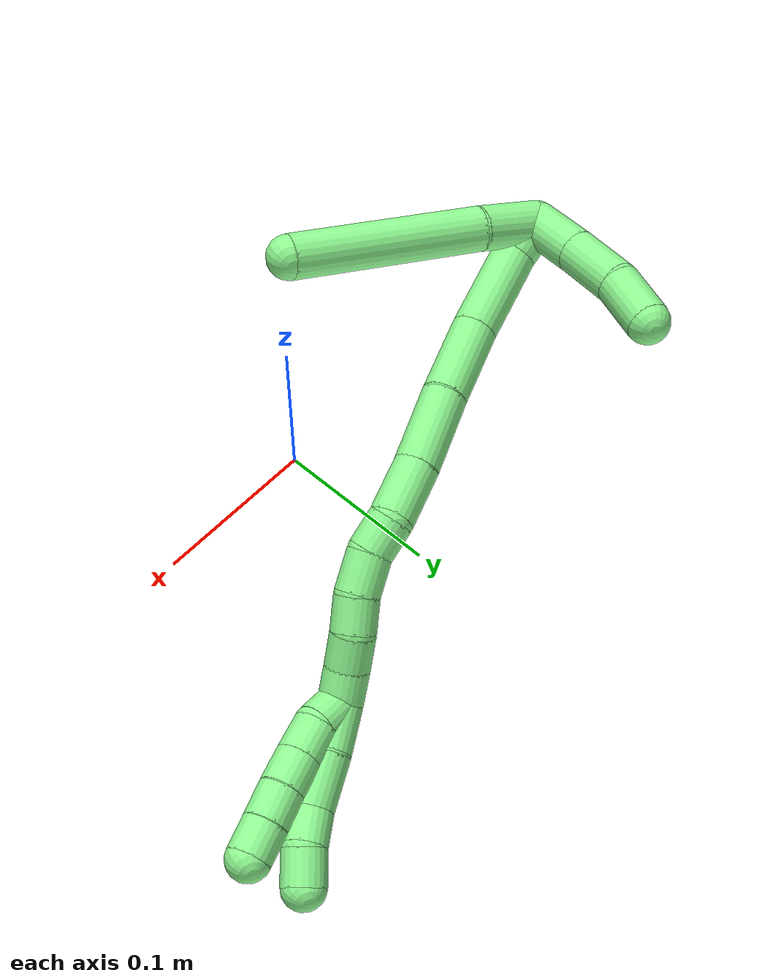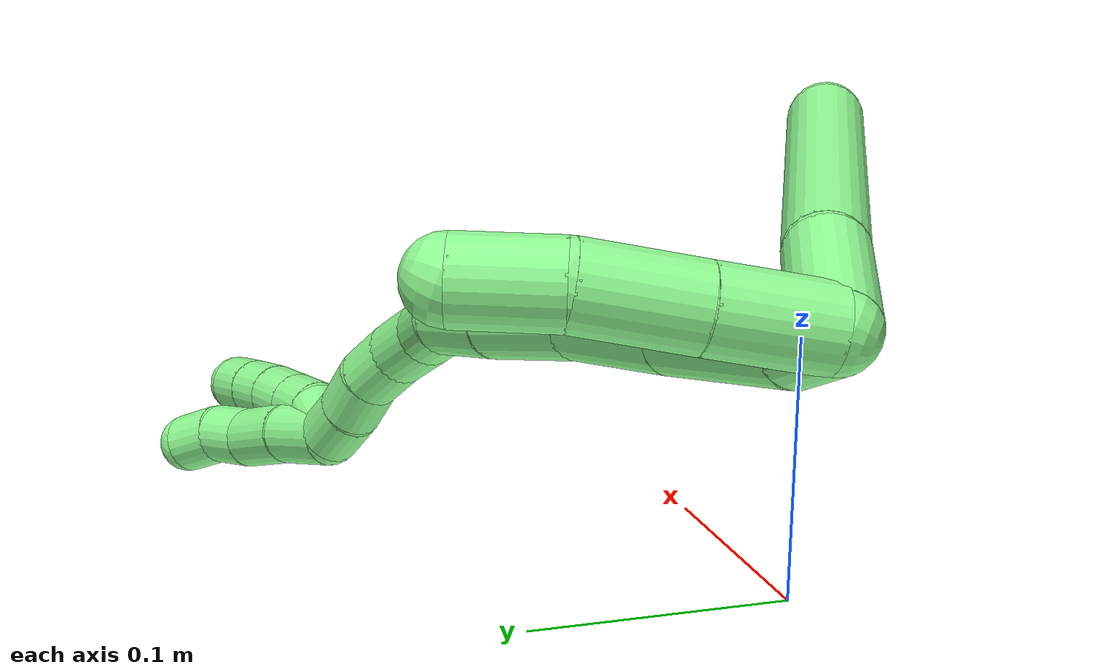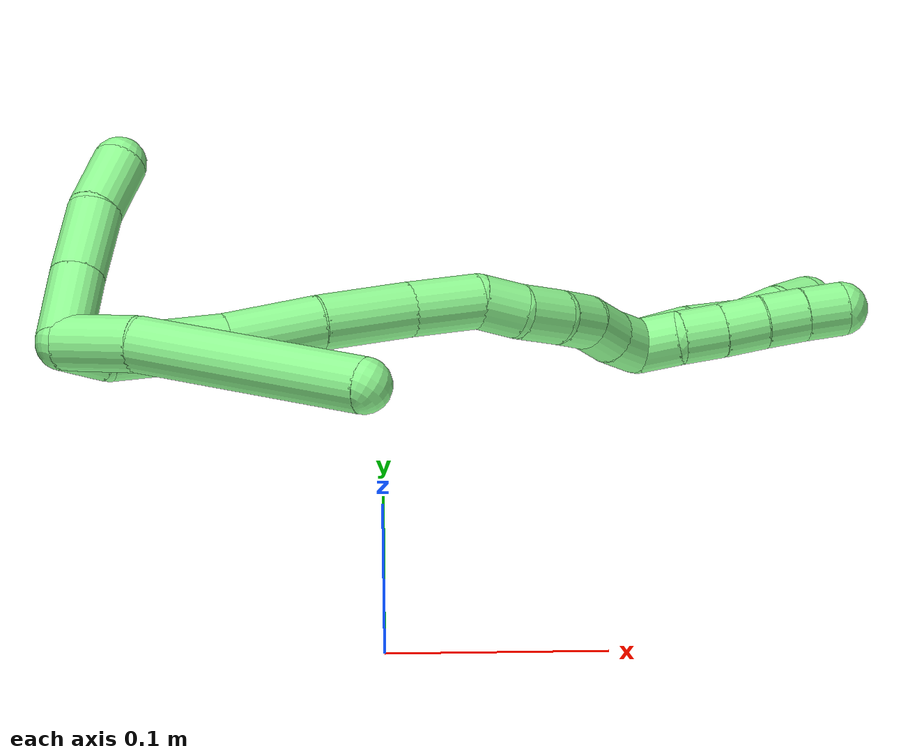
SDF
<sdf version="1.7">
 <world name="default">
  <model name="13">
   <static>0</static>
   <link name="13">
    <collision name="collision-cylinder-e_1_2_8">
     <pose>0.003919 -0.018113 0.004305 1.33746 0.207449 0.164145</pose>
     <geometry><cylinder><radius>0.0125</radius><length>0.038051</length></cylinder></geometry>
     <surface>
      <friction><ode><mu>1.16</mu><mu2>1.16</mu2><slip1>0</slip1><slip2>0</slip2></ode></friction>
      <contact><ode><kp>1e+06</kp><kd>1</kd><max_vel>0</max_vel><min_depth>0.001</min_depth></ode></contact>
     </surface>
    </collision>
    <visual name="visual-cylinder-e_1_2_8">
     <pose>0.003919 -0.018113 0.004305 1.33746 0.207449 0.164145</pose>
     <geometry><cylinder><radius>0.0125</radius><length>0.038051</length></cylinder></geometry>
     <material><ambient>0.564706 0.984314 0.572549 1</ambient></material>
    </visual>
    <collision name="collision-cylinder-e_2_8_6">
     <pose>0.025161 -0.088959 0.015839 1.43455 0.314669 0.275013</pose>
     <geometry><cylinder><radius>0.0125</radius><length>0.111949</length></cylinder></geometry>
     <surface>
      <friction><ode><mu>1.16</mu><mu2>1.16</mu2><slip1>0</slip1><slip2>0</slip2></ode></friction>
      <contact><ode><kp>1e+06</kp><kd>1</kd><max_vel>0</max_vel><min_depth>0.001</min_depth></ode></contact>
     </surface>
    </collision>
    <visual name="visual-cylinder-e_2_8_6">
     <pose>0.025161 -0.088959 0.015839 1.43455 0.314669 0.275013</pose>
     <geometry><cylinder><radius>0.0125</radius><length>0.111949</length></cylinder></geometry>
     <material><ambient>0.564706 0.984314 0.572549 1</ambient></material>
    </visual>
    <collision name="collision-cylinder-e_1_2_9">
     <pose>-0.000881 0.006187 0.016145 -0.365943 -0.050935 0.009427</pose>
     <geometry><cylinder><radius>0.0125</radius><length>0.034624</length></cylinder></geometry>
     <surface>
      <friction><ode><mu>1.16</mu><mu2>1.16</mu2><slip1>0</slip1><slip2>0</slip2></ode></friction>
      <contact><ode><kp>1e+06</kp><kd>1</kd><max_vel>0</max_vel><min_depth>0.001</min_depth></ode></contact>
     </surface>
    </collision>
    <visual name="visual-cylinder-e_1_2_9">
     <pose>-0.000881 0.006187 0.016145 -0.365943 -0.050935 0.009427</pose>
     <geometry><cylinder><radius>0.0125</radius><length>0.034624</length></cylinder></geometry>
     <material><ambient>0.564706 0.984314 0.572549 1</ambient></material>
    </visual>
    <collision name="collision-cylinder-e_2_9_10">
     <pose>-0.002271 0.018055 0.048818 -0.331079 -0.029089 0.00486</pose>
     <geometry><cylinder><radius>0.0125</radius><length>0.034971</length></cylinder></geometry>
     <surface>
      <friction><ode><mu>1.16</mu><mu2>1.16</mu2><slip1>0</slip1><slip2>0</slip2></ode></friction>
      <contact><ode><kp>1e+06</kp><kd>1</kd><max_vel>0</max_vel><min_depth>0.001</min_depth></ode></contact>
     </surface>
    </collision>
    <visual name="visual-cylinder-e_2_9_10">
     <pose>-0.002271 0.018055 0.048818 -0.331079 -0.029089 0.00486</pose>
     <geometry><cylinder><radius>0.0125</radius><length>0.034971</length></cylinder></geometry>
     <material><ambient>0.564706 0.984314 0.572549 1</ambient></material>
    </visual>
    <collision name="collision-cylinder-e_3_10_5">
     <pose>-7.3e-05 0.028223 0.079618 -0.304639 0.179026 -0.027554</pose>
     <geometry><cylinder><radius>0.0125</radius><length>0.030405</length></cylinder></geometry>
     <surface>
      <friction><ode><mu>1.16</mu><mu2>1.16</mu2><slip1>0</slip1><slip2>0</slip2></ode></friction>
      <contact><ode><kp>1e+06</kp><kd>1</kd><max_vel>0</max_vel><min_depth>0.001</min_depth></ode></contact>
     </surface>
    </collision>
    <visual name="visual-cylinder-e_3_10_5">
     <pose>-7.3e-05 0.028223 0.079618 -0.304639 0.179026 -0.027554</pose>
     <geometry><cylinder><radius>0.0125</radius><length>0.030405</length></cylinder></geometry>
     <material><ambient>0.564706 0.984314 0.572549 1</ambient></material>
    </visual>
    <collision name="collision-cylinder-e_1_2_11">
     <pose>0.009231 -0.004475 0.003749 0.873407 1.00687 0.503261</pose>
     <geometry><cylinder><radius>0.0125</radius><length>0.021844</length></cylinder></geometry>
     <surface>
      <friction><ode><mu>1.16</mu><mu2>1.16</mu2><slip1>0</slip1><slip2>0</slip2></ode></friction>
      <contact><ode><kp>1e+06</kp><kd>1</kd><max_vel>0</max_vel><min_depth>0.001</min_depth></ode></contact>
     </surface>
    </collision>
    <visual name="visual-cylinder-e_1_2_11">
     <pose>0.009231 -0.004475 0.003749 0.873407 1.00687 0.503261</pose>
     <geometry><cylinder><radius>0.0125</radius><length>0.021844</length></cylinder></geometry>
     <material><ambient>0.564706 0.984314 0.572549 1</ambient></material>
    </visual>
    <collision name="collision-cylinder-e_2_11_12">
     <pose>0.03592 -0.019976 0.023742 0.596352 0.72683 0.23271</pose>
     <geometry><cylinder><radius>0.0125</radius><length>0.052543</length></cylinder></geometry>
     <surface>
      <friction><ode><mu>1.16</mu><mu2>1.16</mu2><slip1>0</slip1><slip2>0</slip2></ode></friction>
      <contact><ode><kp>1e+06</kp><kd>1</kd><max_vel>0</max_vel><min_depth>0.001</min_depth></ode></contact>
     </surface>
    </collision>
    <visual name="visual-cylinder-e_2_11_12">
     <pose>0.03592 -0.019976 0.023742 0.596352 0.72683 0.23271</pose>
     <geometry><cylinder><radius>0.0125</radius><length>0.052543</length></cylinder></geometry>
     <material><ambient>0.564706 0.984314 0.572549 1</ambient></material>
    </visual>
    <collision name="collision-cylinder-e_3_12_13">
     <pose>0.067119 -0.03969 0.055228 0.518064 0.664444 0.182338</pose>
     <geometry><cylinder><radius>0.0125</radius><length>0.044569</length></cylinder></geometry>
     <surface>
      <friction><ode><mu>1.16</mu><mu2>1.16</mu2><slip1>0</slip1><slip2>0</slip2></ode></friction>
      <contact><ode><kp>1e+06</kp><kd>1</kd><max_vel>0</max_vel><min_depth>0.001</min_depth></ode></contact>
     </surface>
    </collision>
    <visual name="visual-cylinder-e_3_12_13">
     <pose>0.067119 -0.03969 0.055228 0.518064 0.664444 0.182338</pose>
     <geometry><cylinder><radius>0.0125</radius><length>0.044569</length></cylinder></geometry>
     <material><ambient>0.564706 0.984314 0.572549 1</ambient></material>
    </visual>
    <collision name="collision-cylinder-e_4_13_14">
     <pose>0.095727 -0.055638 0.084967 0.46431 0.742081 0.183445</pose>
     <geometry><cylinder><radius>0.0125</radius><length>0.043997</length></cylinder></geometry>
     <surface>
      <friction><ode><mu>1.16</mu><mu2>1.16</mu2><slip1>0</slip1><slip2>0</slip2></ode></friction>
      <contact><ode><kp>1e+06</kp><kd>1</kd><max_vel>0</max_vel><min_depth>0.001</min_depth></ode></contact>
     </surface>
    </collision>
    <visual name="visual-cylinder-e_4_13_14">
     <pose>0.095727 -0.055638 0.084967 0.46431 0.742081 0.183445</pose>
     <geometry><cylinder><radius>0.0125</radius><length>0.043997</length></cylinder></geometry>
     <material><ambient>0.564706 0.984314 0.572549 1</ambient></material>
    </visual>
    <collision name="collision-cylinder-e_5_14_15">
     <pose>0.121652 -0.069339 0.109981 0.549473 0.731026 0.214913</pose>
     <geometry><cylinder><radius>0.0125</radius><length>0.033128</length></cylinder></geometry>
     <surface>
      <friction><ode><mu>1.16</mu><mu2>1.16</mu2><slip1>0</slip1><slip2>0</slip2></ode></friction>
      <contact><ode><kp>1e+06</kp><kd>1</kd><max_vel>0</max_vel><min_depth>0.001</min_depth></ode></contact>
     </surface>
    </collision>
    <visual name="visual-cylinder-e_5_14_15">
     <pose>0.121652 -0.069339 0.109981 0.549473 0.731026 0.214913</pose>
     <geometry><cylinder><radius>0.0125</radius><length>0.033128</length></cylinder></geometry>
     <material><ambient>0.564706 0.984314 0.572549 1</ambient></material>
    </visual>
    <collision name="collision-cylinder-e_6_15_16">
     <pose>0.141584 -0.079598 0.124171 0.804819 1.03246 0.474071</pose>
     <geometry><cylinder><radius>0.0125</radius><length>0.02067</length></cylinder></geometry>
     <surface>
      <friction><ode><mu>1.16</mu><mu2>1.16</mu2><slip1>0</slip1><slip2>0</slip2></ode></friction>
      <contact><ode><kp>1e+06</kp><kd>1</kd><max_vel>0</max_vel><min_depth>0.001</min_depth></ode></contact>
     </surface>
    </collision>
    <visual name="visual-cylinder-e_6_15_16">
     <pose>0.141584 -0.079598 0.124171 0.804819 1.03246 0.474071</pose>
     <geometry><cylinder><radius>0.0125</radius><length>0.02067</length></cylinder></geometry>
     <material><ambient>0.564706 0.984314 0.572549 1</ambient></material>
    </visual>
    <collision name="collision-cylinder-e_7_16_17">
     <pose>0.160572 -0.084851 0.133262 0.258799 1.06479 0.153025</pose>
     <geometry><cylinder><radius>0.0125</radius><length>0.023128</length></cylinder></geometry>
     <surface>
      <friction><ode><mu>1.16</mu><mu2>1.16</mu2><slip1>0</slip1><slip2>0</slip2></ode></friction>
      <contact><ode><kp>1e+06</kp><kd>1</kd><max_vel>0</max_vel><min_depth>0.001</min_depth></ode></contact>
     </surface>
    </collision>
    <visual name="visual-cylinder-e_7_16_17">
     <pose>0.160572 -0.084851 0.133262 0.258799 1.06479 0.153025</pose>
     <geometry><cylinder><radius>0.0125</radius><length>0.023128</length></cylinder></geometry>
     <material><ambient>0.564706 0.984314 0.572549 1</ambient></material>
    </visual>
    <collision name="collision-cylinder-e_8_17_18">
     <pose>0.17958 -0.085282 0.143223 -0.21743 1.08886 -0.131976</pose>
     <geometry><cylinder><radius>0.0125</radius><length>0.020072</length></cylinder></geometry>
     <surface>
      <friction><ode><mu>1.16</mu><mu2>1.16</mu2><slip1>0</slip1><slip2>0</slip2></ode></friction>
      <contact><ode><kp>1e+06</kp><kd>1</kd><max_vel>0</max_vel><min_depth>0.001</min_depth></ode></contact>
     </surface>
    </collision>
    <visual name="visual-cylinder-e_8_17_18">
     <pose>0.17958 -0.085282 0.143223 -0.21743 1.08886 -0.131976</pose>
     <geometry><cylinder><radius>0.0125</radius><length>0.020072</length></cylinder></geometry>
     <material><ambient>0.564706 0.984314 0.572549 1</ambient></material>
    </visual>
    <collision name="collision-cylinder-e_9_18_19">
     <pose>0.198083 -0.082977 0.150206 -0.489875 1.29054 -0.37197</pose>
     <geometry><cylinder><radius>0.0125</radius><length>0.020001</length></cylinder></geometry>
     <surface>
      <friction><ode><mu>1.16</mu><mu2>1.16</mu2><slip1>0</slip1><slip2>0</slip2></ode></friction>
      <contact><ode><kp>1e+06</kp><kd>1</kd><max_vel>0</max_vel><min_depth>0.001</min_depth></ode></contact>
     </surface>
    </collision>
    <visual name="visual-cylinder-e_9_18_19">
     <pose>0.198083 -0.082977 0.150206 -0.489875 1.29054 -0.37197</pose>
     <geometry><cylinder><radius>0.0125</radius><length>0.020001</length></cylinder></geometry>
     <material><ambient>0.564706 0.984314 0.572549 1</ambient></material>
    </visual>
    <collision name="collision-cylinder-e_10_19_1">
     <pose>0.217099 -0.081109 0.156067 -0.164126 1.21764 -0.114554</pose>
     <geometry><cylinder><radius>0.0125</radius><length>0.020047</length></cylinder></geometry>
     <surface>
      <friction><ode><mu>1.16</mu><mu2>1.16</mu2><slip1>0</slip1><slip2>0</slip2></ode></friction>
      <contact><ode><kp>1e+06</kp><kd>1</kd><max_vel>0</max_vel><min_depth>0.001</min_depth></ode></contact>
     </surface>
    </collision>
    <visual name="visual-cylinder-e_10_19_1">
     <pose>0.217099 -0.081109 0.156067 -0.164126 1.21764 -0.114554</pose>
     <geometry><cylinder><radius>0.0125</radius><length>0.020047</length></cylinder></geometry>
     <material><ambient>0.564706 0.984314 0.572549 1</ambient></material>
    </visual>
    <collision name="collision-cylinder-e_1_1_20">
     <pose>0.235497 -0.083599 0.16967 0.291584 0.702096 0.107443</pose>
     <geometry><cylinder><radius>0.0125</radius><length>0.02785</length></cylinder></geometry>
     <surface>
      <friction><ode><mu>1.16</mu><mu2>1.16</mu2><slip1>0</slip1><slip2>0</slip2></ode></friction>
      <contact><ode><kp>1e+06</kp><kd>1</kd><max_vel>0</max_vel><min_depth>0.001</min_depth></ode></contact>
     </surface>
    </collision>
    <visual name="visual-cylinder-e_1_1_20">
     <pose>0.235497 -0.083599 0.16967 0.291584 0.702096 0.107443</pose>
     <geometry><cylinder><radius>0.0125</radius><length>0.02785</length></cylinder></geometry>
     <material><ambient>0.564706 0.984314 0.572549 1</ambient></material>
    </visual>
    <collision name="collision-cylinder-e_2_20_21">
     <pose>0.255827 -0.090175 0.189804 0.339973 0.821081 0.149146</pose>
     <geometry><cylinder><radius>0.0125</radius><length>0.030981</length></cylinder></geometry>
     <surface>
      <friction><ode><mu>1.16</mu><mu2>1.16</mu2><slip1>0</slip1><slip2>0</slip2></ode></friction>
      <contact><ode><kp>1e+06</kp><kd>1</kd><max_vel>0</max_vel><min_depth>0.001</min_depth></ode></contact>
     </surface>
    </collision>
    <visual name="visual-cylinder-e_2_20_21">
     <pose>0.255827 -0.090175 0.189804 0.339973 0.821081 0.149146</pose>
     <geometry><cylinder><radius>0.0125</radius><length>0.030981</length></cylinder></geometry>
     <material><ambient>0.564706 0.984314 0.572549 1</ambient></material>
    </visual>
    <collision name="collision-cylinder-e_3_21_22">
     <pose>0.272931 -0.095695 0.20798 0.238498 0.598078 0.073842</pose>
     <geometry><cylinder><radius>0.0125</radius><length>0.020485</length></cylinder></geometry>
     <surface>
      <friction><ode><mu>1.16</mu><mu2>1.16</mu2><slip1>0</slip1><slip2>0</slip2></ode></friction>
      <contact><ode><kp>1e+06</kp><kd>1</kd><max_vel>0</max_vel><min_depth>0.001</min_depth></ode></contact>
     </surface>
    </collision>
    <visual name="visual-cylinder-e_3_21_22">
     <pose>0.272931 -0.095695 0.20798 0.238498 0.598078 0.073842</pose>
     <geometry><cylinder><radius>0.0125</radius><length>0.020485</length></cylinder></geometry>
     <material><ambient>0.564706 0.984314 0.572549 1</ambient></material>
    </visual>
    <collision name="collision-cylinder-e_4_22_4">
     <pose>0.28597 -0.097173 0.223542 -0.070908 0.779693 -0.029144</pose>
     <geometry><cylinder><radius>0.0125</radius><length>0.020685</length></cylinder></geometry>
     <surface>
      <friction><ode><mu>1.16</mu><mu2>1.16</mu2><slip1>0</slip1><slip2>0</slip2></ode></friction>
      <contact><ode><kp>1e+06</kp><kd>1</kd><max_vel>0</max_vel><min_depth>0.001</min_depth></ode></contact>
     </surface>
    </collision>
    <visual name="visual-cylinder-e_4_22_4">
     <pose>0.28597 -0.097173 0.223542 -0.070908 0.779693 -0.029144</pose>
     <geometry><cylinder><radius>0.0125</radius><length>0.020685</length></cylinder></geometry>
     <material><ambient>0.564706 0.984314 0.572549 1</ambient></material>
    </visual>
    <collision name="collision-cylinder-e_1_1_23">
     <pose>0.230287 -0.087753 0.165292 0.892928 0.387999 0.18755</pose>
     <geometry><cylinder><radius>0.0125</radius><length>0.02</length></cylinder></geometry>
     <surface>
      <friction><ode><mu>1.16</mu><mu2>1.16</mu2><slip1>0</slip1><slip2>0</slip2></ode></friction>
      <contact><ode><kp>1e+06</kp><kd>1</kd><max_vel>0</max_vel><min_depth>0.001</min_depth></ode></contact>
     </surface>
    </collision>
    <visual name="visual-cylinder-e_1_1_23">
     <pose>0.230287 -0.087753 0.165292 0.892928 0.387999 0.18755</pose>
     <geometry><cylinder><radius>0.0125</radius><length>0.02</length></cylinder></geometry>
     <material><ambient>0.564706 0.984314 0.572549 1</ambient></material>
    </visual>
    <collision name="collision-cylinder-e_2_23_24">
     <pose>0.239996 -0.099685 0.177624 0.626337 0.634198 0.211746</pose>
     <geometry><cylinder><radius>0.0125</radius><length>0.02</length></cylinder></geometry>
     <surface>
      <friction><ode><mu>1.16</mu><mu2>1.16</mu2><slip1>0</slip1><slip2>0</slip2></ode></friction>
      <contact><ode><kp>1e+06</kp><kd>1</kd><max_vel>0</max_vel><min_depth>0.001</min_depth></ode></contact>
     </surface>
    </collision>
    <visual name="visual-cylinder-e_2_23_24">
     <pose>0.239996 -0.099685 0.177624 0.626337 0.634198 0.211746</pose>
     <geometry><cylinder><radius>0.0125</radius><length>0.02</length></cylinder></geometry>
     <material><ambient>0.564706 0.984314 0.572549 1</ambient></material>
    </visual>
    <collision name="collision-cylinder-e_3_24_25">
     <pose>0.251663 -0.108987 0.190936 0.593693 0.611586 0.192535</pose>
     <geometry><cylinder><radius>0.0125</radius><length>0.02</length></cylinder></geometry>
     <surface>
      <friction><ode><mu>1.16</mu><mu2>1.16</mu2><slip1>0</slip1><slip2>0</slip2></ode></friction>
      <contact><ode><kp>1e+06</kp><kd>1</kd><max_vel>0</max_vel><min_depth>0.001</min_depth></ode></contact>
     </surface>
    </collision>
    <visual name="visual-cylinder-e_3_24_25">
     <pose>0.251663 -0.108987 0.190936 0.593693 0.611586 0.192535</pose>
     <geometry><cylinder><radius>0.0125</radius><length>0.02</length></cylinder></geometry>
     <material><ambient>0.564706 0.984314 0.572549 1</ambient></material>
    </visual>
    <collision name="collision-cylinder-e_4_25_26">
     <pose>0.263581 -0.117659 0.20444 0.547142 0.665671 0.193404</pose>
     <geometry><cylinder><radius>0.0125</radius><length>0.02</length></cylinder></geometry>
     <surface>
      <friction><ode><mu>1.16</mu><mu2>1.16</mu2><slip1>0</slip1><slip2>0</slip2></ode></friction>
      <contact><ode><kp>1e+06</kp><kd>1</kd><max_vel>0</max_vel><min_depth>0.001</min_depth></ode></contact>
     </surface>
    </collision>
    <visual name="visual-cylinder-e_4_25_26">
     <pose>0.263581 -0.117659 0.20444 0.547142 0.665671 0.193404</pose>
     <geometry><cylinder><radius>0.0125</radius><length>0.02</length></cylinder></geometry>
     <material><ambient>0.564706 0.984314 0.572549 1</ambient></material>
    </visual>
    <collision name="collision-cylinder-e_5_26_3">
     <pose>0.276188 -0.125816 0.217646 0.559574 0.698609 0.208551</pose>
     <geometry><cylinder><radius>0.0125</radius><length>0.02</length></cylinder></geometry>
     <surface>
      <friction><ode><mu>1.16</mu><mu2>1.16</mu2><slip1>0</slip1><slip2>0</slip2></ode></friction>
      <contact><ode><kp>1e+06</kp><kd>1</kd><max_vel>0</max_vel><min_depth>0.001</min_depth></ode></contact>
     </surface>
    </collision>
    <visual name="visual-cylinder-e_5_26_3">
     <pose>0.276188 -0.125816 0.217646 0.559574 0.698609 0.208551</pose>
     <geometry><cylinder><radius>0.0125</radius><length>0.02</length></cylinder></geometry>
     <material><ambient>0.564706 0.984314 0.572549 1</ambient></material>
    </visual>
    <collision name="collision-sphere-3">
     <pose>0.282619 -0.12988 0.224136 0 -0 0</pose>
     <geometry><sphere><radius>0.0125</radius></sphere></geometry>
     <surface>
      <friction><ode><mu>1.16</mu><mu2>1.16</mu2><slip1>0</slip1><slip2>0</slip2></ode></friction>
      <contact><ode><kp>1e+06</kp><kd>1</kd><max_vel>0</max_vel><min_depth>0.001</min_depth></ode></contact>
     </surface>
    </collision>
    <visual name="visual-sphere-3">
     <pose>0.282619 -0.12988 0.224136 0 -0 0</pose>
     <geometry><sphere><radius>0.0125</radius></sphere></geometry>
     <material><ambient>0.564706 0.984314 0.572549 1</ambient></material>
    </visual>
    <collision name="collision-sphere-26">
     <pose>0.269756 -0.121751 0.211157 0 -0 0</pose>
     <geometry><sphere><radius>0.0125</radius></sphere></geometry>
     <surface>
      <friction><ode><mu>1.16</mu><mu2>1.16</mu2><slip1>0</slip1><slip2>0</slip2></ode></friction>
      <contact><ode><kp>1e+06</kp><kd>1</kd><max_vel>0</max_vel><min_depth>0.001</min_depth></ode></contact>
     </surface>
    </collision>
    <visual name="visual-sphere-26">
     <pose>0.269756 -0.121751 0.211157 0 -0 0</pose>
     <geometry><sphere><radius>0.0125</radius></sphere></geometry>
     <material><ambient>0.564706 0.984314 0.572549 1</ambient></material>
    </visual>
    <collision name="collision-sphere-25">
     <pose>0.257405 -0.113567 0.197723 0 -0 0</pose>
     <geometry><sphere><radius>0.0125</radius></sphere></geometry>
     <surface>
      <friction><ode><mu>1.16</mu><mu2>1.16</mu2><slip1>0</slip1><slip2>0</slip2></ode></friction>
      <contact><ode><kp>1e+06</kp><kd>1</kd><max_vel>0</max_vel><min_depth>0.001</min_depth></ode></contact>
     </surface>
    </collision>
    <visual name="visual-sphere-25">
     <pose>0.257405 -0.113567 0.197723 0 -0 0</pose>
     <geometry><sphere><radius>0.0125</radius></sphere></geometry>
     <material><ambient>0.564706 0.984314 0.572549 1</ambient></material>
    </visual>
    <collision name="collision-sphere-24">
     <pose>0.245921 -0.104407 0.18415 0 -0 0</pose>
     <geometry><sphere><radius>0.0125</radius></sphere></geometry>
     <surface>
      <friction><ode><mu>1.16</mu><mu2>1.16</mu2><slip1>0</slip1><slip2>0</slip2></ode></friction>
      <contact><ode><kp>1e+06</kp><kd>1</kd><max_vel>0</max_vel><min_depth>0.001</min_depth></ode></contact>
     </surface>
    </collision>
    <visual name="visual-sphere-24">
     <pose>0.245921 -0.104407 0.18415 0 -0 0</pose>
     <geometry><sphere><radius>0.0125</radius></sphere></geometry>
     <material><ambient>0.564706 0.984314 0.572549 1</ambient></material>
    </visual>
    <collision name="collision-sphere-23">
     <pose>0.234071 -0.094963 0.171097 0 -0 0</pose>
     <geometry><sphere><radius>0.0125</radius></sphere></geometry>
     <surface>
      <friction><ode><mu>1.16</mu><mu2>1.16</mu2><slip1>0</slip1><slip2>0</slip2></ode></friction>
      <contact><ode><kp>1e+06</kp><kd>1</kd><max_vel>0</max_vel><min_depth>0.001</min_depth></ode></contact>
     </surface>
    </collision>
    <visual name="visual-sphere-23">
     <pose>0.234071 -0.094963 0.171097 0 -0 0</pose>
     <geometry><sphere><radius>0.0125</radius></sphere></geometry>
     <material><ambient>0.564706 0.984314 0.572549 1</ambient></material>
    </visual>
    <collision name="collision-sphere-4">
     <pose>0.293241 -0.096652 0.230878 0 -0 0</pose>
     <geometry><sphere><radius>0.0125</radius></sphere></geometry>
     <surface>
      <friction><ode><mu>1.16</mu><mu2>1.16</mu2><slip1>0</slip1><slip2>0</slip2></ode></friction>
      <contact><ode><kp>1e+06</kp><kd>1</kd><max_vel>0</max_vel><min_depth>0.001</min_depth></ode></contact>
     </surface>
    </collision>
    <visual name="visual-sphere-4">
     <pose>0.293241 -0.096652 0.230878 0 -0 0</pose>
     <geometry><sphere><radius>0.0125</radius></sphere></geometry>
     <material><ambient>0.564706 0.984314 0.572549 1</ambient></material>
    </visual>
    <collision name="collision-sphere-22">
     <pose>0.278698 -0.097694 0.216205 0 -0 0</pose>
     <geometry><sphere><radius>0.0125</radius></sphere></geometry>
     <surface>
      <friction><ode><mu>1.16</mu><mu2>1.16</mu2><slip1>0</slip1><slip2>0</slip2></ode></friction>
      <contact><ode><kp>1e+06</kp><kd>1</kd><max_vel>0</max_vel><min_depth>0.001</min_depth></ode></contact>
     </surface>
    </collision>
    <visual name="visual-sphere-22">
     <pose>0.278698 -0.097694 0.216205 0 -0 0</pose>
     <geometry><sphere><radius>0.0125</radius></sphere></geometry>
     <material><ambient>0.564706 0.984314 0.572549 1</ambient></material>
    </visual>
    <collision name="collision-sphere-21">
     <pose>0.267164 -0.093695 0.199755 0 -0 0</pose>
     <geometry><sphere><radius>0.0125</radius></sphere></geometry>
     <surface>
      <friction><ode><mu>1.16</mu><mu2>1.16</mu2><slip1>0</slip1><slip2>0</slip2></ode></friction>
      <contact><ode><kp>1e+06</kp><kd>1</kd><max_vel>0</max_vel><min_depth>0.001</min_depth></ode></contact>
     </surface>
    </collision>
    <visual name="visual-sphere-21">
     <pose>0.267164 -0.093695 0.199755 0 -0 0</pose>
     <geometry><sphere><radius>0.0125</radius></sphere></geometry>
     <material><ambient>0.564706 0.984314 0.572549 1</ambient></material>
    </visual>
    <collision name="collision-sphere-20">
     <pose>0.24449 -0.086655 0.179852 0 -0 0</pose>
     <geometry><sphere><radius>0.0125</radius></sphere></geometry>
     <surface>
      <friction><ode><mu>1.16</mu><mu2>1.16</mu2><slip1>0</slip1><slip2>0</slip2></ode></friction>
      <contact><ode><kp>1e+06</kp><kd>1</kd><max_vel>0</max_vel><min_depth>0.001</min_depth></ode></contact>
     </surface>
    </collision>
    <visual name="visual-sphere-20">
     <pose>0.24449 -0.086655 0.179852 0 -0 0</pose>
     <geometry><sphere><radius>0.0125</radius></sphere></geometry>
     <material><ambient>0.564706 0.984314 0.572549 1</ambient></material>
    </visual>
    <collision name="collision-sphere-5">
     <pose>0.002634 0.032711 0.093889 0 -0 0</pose>
     <geometry><sphere><radius>0.0125</radius></sphere></geometry>
     <surface>
      <friction><ode><mu>1.16</mu><mu2>1.16</mu2><slip1>0</slip1><slip2>0</slip2></ode></friction>
      <contact><ode><kp>1e+06</kp><kd>1</kd><max_vel>0</max_vel><min_depth>0.001</min_depth></ode></contact>
     </surface>
    </collision>
    <visual name="visual-sphere-5">
     <pose>0.002634 0.032711 0.093889 0 -0 0</pose>
     <geometry><sphere><radius>0.0125</radius></sphere></geometry>
     <material><ambient>0.564706 0.984314 0.572549 1</ambient></material>
    </visual>
    <collision name="collision-sphere-10">
     <pose>-0.00278 0.023736 0.065347 0 -0 0</pose>
     <geometry><sphere><radius>0.0125</radius></sphere></geometry>
     <surface>
      <friction><ode><mu>1.16</mu><mu2>1.16</mu2><slip1>0</slip1><slip2>0</slip2></ode></friction>
      <contact><ode><kp>1e+06</kp><kd>1</kd><max_vel>0</max_vel><min_depth>0.001</min_depth></ode></contact>
     </surface>
    </collision>
    <visual name="visual-sphere-10">
     <pose>-0.00278 0.023736 0.065347 0 -0 0</pose>
     <geometry><sphere><radius>0.0125</radius></sphere></geometry>
     <material><ambient>0.564706 0.984314 0.572549 1</ambient></material>
    </visual>
    <collision name="collision-sphere-6">
     <pose>0.042486 -0.141692 0.023069 0 -0 0</pose>
     <geometry><sphere><radius>0.0125</radius></sphere></geometry>
     <surface>
      <friction><ode><mu>1.16</mu><mu2>1.16</mu2><slip1>0</slip1><slip2>0</slip2></ode></friction>
      <contact><ode><kp>1e+06</kp><kd>1</kd><max_vel>0</max_vel><min_depth>0.001</min_depth></ode></contact>
     </surface>
    </collision>
    <visual name="visual-sphere-6">
     <pose>0.042486 -0.141692 0.023069 0 -0 0</pose>
     <geometry><sphere><radius>0.0125</radius></sphere></geometry>
     <material><ambient>0.564706 0.984314 0.572549 1</ambient></material>
    </visual>
    <collision name="collision-sphere-9">
     <pose>-0.001763 0.012373 0.03229 0 -0 0</pose>
     <geometry><sphere><radius>0.0125</radius></sphere></geometry>
     <surface>
      <friction><ode><mu>1.16</mu><mu2>1.16</mu2><slip1>0</slip1><slip2>0</slip2></ode></friction>
      <contact><ode><kp>1e+06</kp><kd>1</kd><max_vel>0</max_vel><min_depth>0.001</min_depth></ode></contact>
     </surface>
    </collision>
    <visual name="visual-sphere-9">
     <pose>-0.001763 0.012373 0.03229 0 -0 0</pose>
     <geometry><sphere><radius>0.0125</radius></sphere></geometry>
     <material><ambient>0.564706 0.984314 0.572549 1</ambient></material>
    </visual>
    <collision name="collision-sphere-2">
     <geometry><sphere><radius>0.0125</radius></sphere></geometry>
     <surface>
      <friction><ode><mu>1.16</mu><mu2>1.16</mu2><slip1>0</slip1><slip2>0</slip2></ode></friction>
      <contact><ode><kp>1e+06</kp><kd>1</kd><max_vel>0</max_vel><min_depth>0.001</min_depth></ode></contact>
     </surface>
    </collision>
    <visual name="visual-sphere-2">
     <geometry><sphere><radius>0.0125</radius></sphere></geometry>
     <material><ambient>0.564706 0.984314 0.572549 1</ambient></material>
    </visual>
    <collision name="collision-sphere-19">
     <pose>0.207694 -0.081676 0.152647 0 -0 0</pose>
     <geometry><sphere><radius>0.0125</radius></sphere></geometry>
     <surface>
      <friction><ode><mu>1.16</mu><mu2>1.16</mu2><slip1>0</slip1><slip2>0</slip2></ode></friction>
      <contact><ode><kp>1e+06</kp><kd>1</kd><max_vel>0</max_vel><min_depth>0.001</min_depth></ode></contact>
     </surface>
    </collision>
    <visual name="visual-sphere-19">
     <pose>0.207694 -0.081676 0.152647 0 -0 0</pose>
     <geometry><sphere><radius>0.0125</radius></sphere></geometry>
     <material><ambient>0.564706 0.984314 0.572549 1</ambient></material>
    </visual>
    <collision name="collision-sphere-8">
     <pose>0.007837 -0.036226 0.00861 0 -0 0</pose>
     <geometry><sphere><radius>0.0125</radius></sphere></geometry>
     <surface>
      <friction><ode><mu>1.16</mu><mu2>1.16</mu2><slip1>0</slip1><slip2>0</slip2></ode></friction>
      <contact><ode><kp>1e+06</kp><kd>1</kd><max_vel>0</max_vel><min_depth>0.001</min_depth></ode></contact>
     </surface>
    </collision>
    <visual name="visual-sphere-8">
     <pose>0.007837 -0.036226 0.00861 0 -0 0</pose>
     <geometry><sphere><radius>0.0125</radius></sphere></geometry>
     <material><ambient>0.564706 0.984314 0.572549 1</ambient></material>
    </visual>
    <collision name="collision-sphere-11">
     <pose>0.018462 -0.00895 0.007498 0 -0 0</pose>
     <geometry><sphere><radius>0.0125</radius></sphere></geometry>
     <surface>
      <friction><ode><mu>1.16</mu><mu2>1.16</mu2><slip1>0</slip1><slip2>0</slip2></ode></friction>
      <contact><ode><kp>1e+06</kp><kd>1</kd><max_vel>0</max_vel><min_depth>0.001</min_depth></ode></contact>
     </surface>
    </collision>
    <visual name="visual-sphere-11">
     <pose>0.018462 -0.00895 0.007498 0 -0 0</pose>
     <geometry><sphere><radius>0.0125</radius></sphere></geometry>
     <material><ambient>0.564706 0.984314 0.572549 1</ambient></material>
    </visual>
    <collision name="collision-sphere-12">
     <pose>0.053377 -0.031002 0.039986 0 -0 0</pose>
     <geometry><sphere><radius>0.0125</radius></sphere></geometry>
     <surface>
      <friction><ode><mu>1.16</mu><mu2>1.16</mu2><slip1>0</slip1><slip2>0</slip2></ode></friction>
      <contact><ode><kp>1e+06</kp><kd>1</kd><max_vel>0</max_vel><min_depth>0.001</min_depth></ode></contact>
     </surface>
    </collision>
    <visual name="visual-sphere-12">
     <pose>0.053377 -0.031002 0.039986 0 -0 0</pose>
     <geometry><sphere><radius>0.0125</radius></sphere></geometry>
     <material><ambient>0.564706 0.984314 0.572549 1</ambient></material>
    </visual>
    <collision name="collision-sphere-13">
     <pose>0.08086 -0.048377 0.070469 0 -0 0</pose>
     <geometry><sphere><radius>0.0125</radius></sphere></geometry>
     <surface>
      <friction><ode><mu>1.16</mu><mu2>1.16</mu2><slip1>0</slip1><slip2>0</slip2></ode></friction>
      <contact><ode><kp>1e+06</kp><kd>1</kd><max_vel>0</max_vel><min_depth>0.001</min_depth></ode></contact>
     </surface>
    </collision>
    <visual name="visual-sphere-13">
     <pose>0.08086 -0.048377 0.070469 0 -0 0</pose>
     <geometry><sphere><radius>0.0125</radius></sphere></geometry>
     <material><ambient>0.564706 0.984314 0.572549 1</ambient></material>
    </visual>
    <collision name="collision-sphere-14">
     <pose>0.110594 -0.062899 0.099464 0 -0 0</pose>
     <geometry><sphere><radius>0.0125</radius></sphere></geometry>
     <surface>
      <friction><ode><mu>1.16</mu><mu2>1.16</mu2><slip1>0</slip1><slip2>0</slip2></ode></friction>
      <contact><ode><kp>1e+06</kp><kd>1</kd><max_vel>0</max_vel><min_depth>0.001</min_depth></ode></contact>
     </surface>
    </collision>
    <visual name="visual-sphere-14">
     <pose>0.110594 -0.062899 0.099464 0 -0 0</pose>
     <geometry><sphere><radius>0.0125</radius></sphere></geometry>
     <material><ambient>0.564706 0.984314 0.572549 1</ambient></material>
    </visual>
    <collision name="collision-sphere-15">
     <pose>0.132711 -0.075779 0.120497 0 -0 0</pose>
     <geometry><sphere><radius>0.0125</radius></sphere></geometry>
     <surface>
      <friction><ode><mu>1.16</mu><mu2>1.16</mu2><slip1>0</slip1><slip2>0</slip2></ode></friction>
      <contact><ode><kp>1e+06</kp><kd>1</kd><max_vel>0</max_vel><min_depth>0.001</min_depth></ode></contact>
     </surface>
    </collision>
    <visual name="visual-sphere-15">
     <pose>0.132711 -0.075779 0.120497 0 -0 0</pose>
     <geometry><sphere><radius>0.0125</radius></sphere></geometry>
     <material><ambient>0.564706 0.984314 0.572549 1</ambient></material>
    </visual>
    <collision name="collision-sphere-16">
     <pose>0.150457 -0.083417 0.127844 0 -0 0</pose>
     <geometry><sphere><radius>0.0125</radius></sphere></geometry>
     <surface>
      <friction><ode><mu>1.16</mu><mu2>1.16</mu2><slip1>0</slip1><slip2>0</slip2></ode></friction>
      <contact><ode><kp>1e+06</kp><kd>1</kd><max_vel>0</max_vel><min_depth>0.001</min_depth></ode></contact>
     </surface>
    </collision>
    <visual name="visual-sphere-16">
     <pose>0.150457 -0.083417 0.127844 0 -0 0</pose>
     <geometry><sphere><radius>0.0125</radius></sphere></geometry>
     <material><ambient>0.564706 0.984314 0.572549 1</ambient></material>
    </visual>
    <collision name="collision-sphere-17">
     <pose>0.170687 -0.086286 0.13868 0 -0 0</pose>
     <geometry><sphere><radius>0.0125</radius></sphere></geometry>
     <surface>
      <friction><ode><mu>1.16</mu><mu2>1.16</mu2><slip1>0</slip1><slip2>0</slip2></ode></friction>
      <contact><ode><kp>1e+06</kp><kd>1</kd><max_vel>0</max_vel><min_depth>0.001</min_depth></ode></contact>
     </surface>
    </collision>
    <visual name="visual-sphere-17">
     <pose>0.170687 -0.086286 0.13868 0 -0 0</pose>
     <geometry><sphere><radius>0.0125</radius></sphere></geometry>
     <material><ambient>0.564706 0.984314 0.572549 1</ambient></material>
    </visual>
    <collision name="collision-sphere-18">
     <pose>0.188473 -0.084279 0.147765 0 -0 0</pose>
     <geometry><sphere><radius>0.0125</radius></sphere></geometry>
     <surface>
      <friction><ode><mu>1.16</mu><mu2>1.16</mu2><slip1>0</slip1><slip2>0</slip2></ode></friction>
      <contact><ode><kp>1e+06</kp><kd>1</kd><max_vel>0</max_vel><min_depth>0.001</min_depth></ode></contact>
     </surface>
    </collision>
    <visual name="visual-sphere-18">
     <pose>0.188473 -0.084279 0.147765 0 -0 0</pose>
     <geometry><sphere><radius>0.0125</radius></sphere></geometry>
     <material><ambient>0.564706 0.984314 0.572549 1</ambient></material>
    </visual>
    <collision name="collision-sphere-1">
     <pose>0.226504 -0.080543 0.159487 0 -0 0</pose>
     <geometry><sphere><radius>0.0125</radius></sphere></geometry>
     <surface>
      <friction><ode><mu>1.16</mu><mu2>1.16</mu2><slip1>0</slip1><slip2>0</slip2></ode></friction>
      <contact><ode><kp>1e+06</kp><kd>1</kd><max_vel>0</max_vel><min_depth>0.001</min_depth></ode></contact>
     </surface>
    </collision>
    <visual name="visual-sphere-1">
     <pose>0.226504 -0.080543 0.159487 0 -0 0</pose>
     <geometry><sphere><radius>0.0125</radius></sphere></geometry>
     <material><ambient>0.564706 0.984314 0.572549 1</ambient></material>
    </visual>
    <inertial>
     <pose>0.114613 -0.060135 0.094749 0 -0 0</pose>
     <mass>0.75</mass>
     <inertia>
      <ixx>0.000245</ixx>
      <ixy>0</ixy>
      <ixz>0</ixz>
      <iyy>0.000118</iyy>
      <iyz>0</iyz>
      <izz>8.6e-05</izz>
     </inertia>
    </inertial>
   </link>
   <pose>-0.139252 0.060461 0.140733 -0.946107 0.981511 0.023081</pose>
  </model>
 </world>
</sdf>
